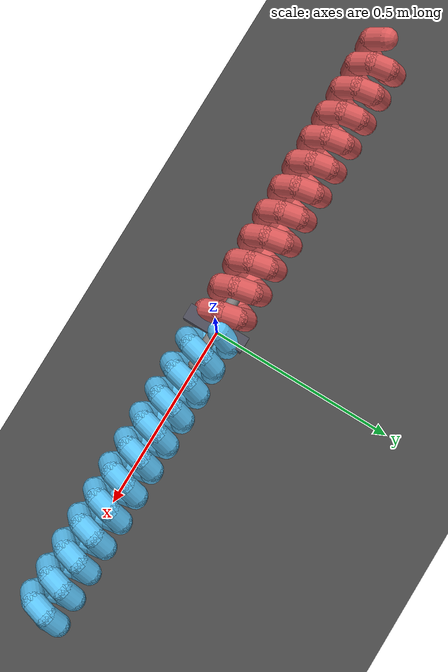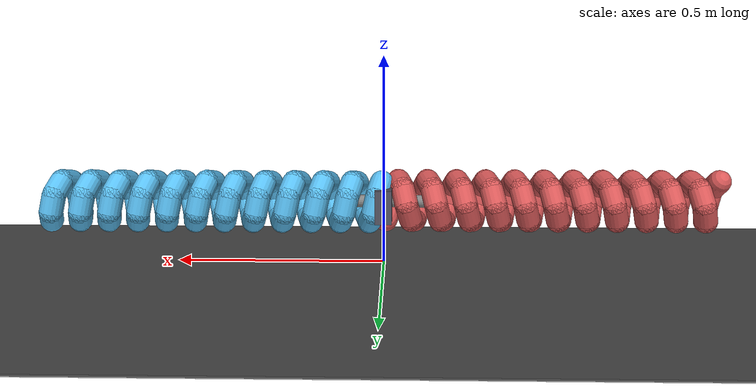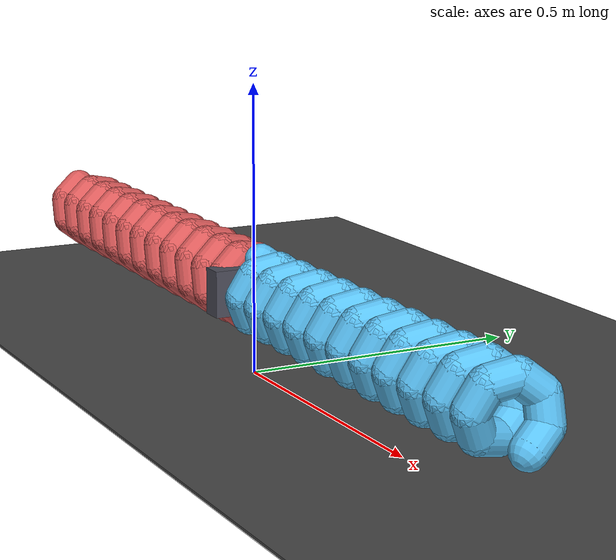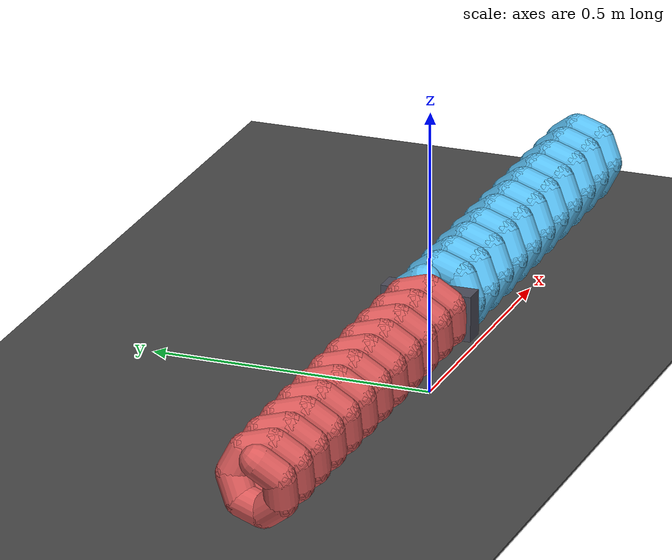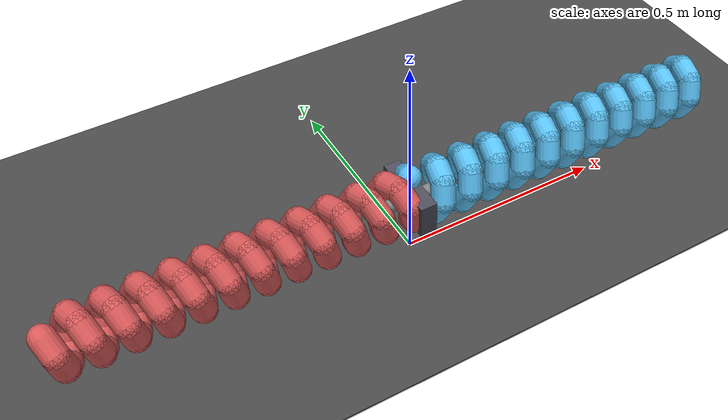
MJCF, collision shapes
<mujoco model="screw_snake_cad">
  <compiler angle="degree" coordinate="local" autolimits="true" inertiafromgeom="true"/>
  <option timestep="0.001" gravity="0 0 -9.81" integrator="implicitfast" iterations="100" solver="Newton"/>

  <default>
    <geom rgba="0.8 0.8 0.8 1" condim="6" friction="6.0 0.01 0.002"
          solref="0.003 1" solimp="0.96 0.96 0.01"/>
    <joint armature="0.001" damping="0.05"/>
    <motor ctrllimited="false"/>   <!-- velocity actuators -->
  </default>

  <asset>
    <!-- NEW CAD meshes for visuals -->
    <mesh name="cad_left"  file="NEW_SIMPLIFY_TESTER_REV_A.stl"  scale="0.01 0.01 0.01"/>
    <mesh name="cad_right" file="NEW_TESTER_REV_B.stl"  scale="0.01 0.01 0.01"/>

    <!-- Checkerboard texture for improved ground visibility -->
    <texture name="checker" type="2d" builtin="checker" width="512" height="512"
             rgb1="1.0 1.0 1.0" rgb2="0.85 0.85 0.85"/>
    <material name="checkermat" texture="checker" texrepeat="30 30" reflectance="0.3" specular="0.5" shininess="0.5"/>
  </asset>

  <worldbody>
    <!-- Bright lights for better visibility -->
    <light directional="true" diffuse="0.8 0.8 0.8" specular="0.3 0.3 0.3" pos="0 0 5" dir="0 0 -1"/>
    <light directional="true" diffuse="0.4 0.4 0.4" specular="0.1 0.1 0.1" pos="3 3 4" dir="-1 -1 -1"/>
    <light directional="true" diffuse="0.4 0.4 0.4" specular="0.1 0.1 0.1" pos="-3 -3 4" dir="1 1 -1"/>

    <!-- Improved ground plane with checkerboard pattern -->
    <geom name="ground" type="plane" size="10 10 0.2" material="checkermat" friction="2.5 0.01 0.002"/>

    <!-- Compliant soft mat for ribs to bite into (semi-transparent so checkerboard shows through) -->
    <body pos="0 0 0.002">
      <geom name="mat" type="box" size="8 8 0.002" rgba="0.28 0.28 0.28 0.2"
            friction="6.0 0.01 0.002" solref="0.004 2.0" solimp="0.90 0.95 0.001"/>
    </body>

    <!-- Ridges: enable for X-only travel; disable for Y travel to avoid hopping -->

    <body name="snake_base" pos="0 0 0.15">
      <!-- Allow translation in X, Y, Z (from snake_screws.xml) -->
      <joint name="slide_x" type="slide" axis="1 0 0" limited="false" damping="0.2"/>
      <joint name="slide_y" type="slide" axis="0 1 0" limited="false" damping="0.8"/>
      <joint name="slide_z" type="slide" axis="0 0 1" limited="true" range="0.14 0.16" damping="2.0"/>

      <!-- mid chassis (no contact) - heavier for more normal force -->
      <geom name="chassis" type="box" size="0.05 0.06 0.02" pos="0 0 0.03"
            rgba="0.1 0.15 0.2 0" mass="1.0" contype="0" conaffinity="0"/>

      <!-- CENTER OBJECT: Connects screws, adds mass/inertia -->
      <geom name="center_keel" type="box" size="0.02 0.08 0.04" pos="0 0 0"
            rgba="0.3 0.3 0.35 0" mass="0.20"/>

      <!-- Hinge pin connecting the two screws (visible) -->
      <geom name="hinge_pin" type="capsule" fromto="-0.1 0 0 0.1 0 0" size="0.015"
            rgba="0.5 0.5 0.5 1" contype="0" conaffinity="0" mass="0.05"/>

      <!-- Right screw: RIGHT-HAND thread (physics from snake_screws.xml) -->
    <body name="screw_right" pos="-0.405 0 0">
      <joint name="jr" type="hinge" axis="1 0 0" pos="0 0 0"
             limited="false" damping="0.001" frictionloss="0.0"/>

      <!-- CAD visual mesh -->
      <geom name="cad_right_vis" type="mesh" mesh="cad_right"
            pos="0.405 0 0.0204"
            euler="0 90 0" rgba="0.85 0.2 0.2 1"
            contype="0" conaffinity="0" mass="0"/>

      <!-- Physics geometry (invisible) -->
      <geom name="core_screw_right" type="cylinder" fromto="-0.4 0 0  0.4 0 0"
            size="0.0425" rgba="0.595 0.245 0.245 0" mass="0.4"
            contype="0" conaffinity="0"/>

      <!-- Thread ribs (invisible, from snake_screws.xml) -->
      <geom type="capsule" fromto="-0.4 -0.0111 0.0487 -0.39 -0.045 0.0217" size="0.028" rgba="0.85 0.35 0.35 0" friction="3.5 0.01 0.002" mass="0.003"/>
      <geom type="capsule" fromto="-0.39 -0.045 0.0217 -0.38 -0.045 -0.0217" size="0.028" rgba="0.85 0.35 0.35 0" friction="3.5 0.01 0.002" mass="0.003"/>
      <geom type="capsule" fromto="-0.38 -0.045 -0.0217 -0.37 -0.0111 -0.0487" size="0.028" rgba="0.85 0.35 0.35 0" friction="3.5 0.01 0.002" mass="0.003"/>
      <geom type="capsule" fromto="-0.37 -0.0111 -0.0487 -0.36 0.0312 -0.0391" size="0.028" rgba="0.85 0.35 0.35 0" friction="3.5 0.01 0.002" mass="0.003"/>
      <geom type="capsule" fromto="-0.36 0.0312 -0.0391 -0.35 0.05 0" size="0.028" rgba="0.85 0.35 0.35 0" friction="3.5 0.01 0.002" mass="0.003"/>
      <geom type="capsule" fromto="-0.35 0.05 0 -0.34 0.0312 0.0391" size="0.028" rgba="0.85 0.35 0.35 0" friction="3.5 0.01 0.002" mass="0.003"/>
      <geom type="capsule" fromto="-0.34 0.0312 0.0391 -0.33 -0.0111 0.0487" size="0.028" rgba="0.85 0.35 0.35 0" friction="3.5 0.01 0.002" mass="0.003"/>
      <geom type="capsule" fromto="-0.33 -0.0111 0.0487 -0.32 -0.045 0.0217" size="0.028" rgba="0.85 0.35 0.35 0" friction="3.5 0.01 0.002" mass="0.003"/>
      <geom type="capsule" fromto="-0.32 -0.045 0.0217 -0.31 -0.045 -0.0217" size="0.028" rgba="0.85 0.35 0.35 0" friction="3.5 0.01 0.002" mass="0.003"/>
      <geom type="capsule" fromto="-0.31 -0.045 -0.0217 -0.30 -0.0111 -0.0487" size="0.028" rgba="0.85 0.35 0.35 0" friction="3.5 0.01 0.002" mass="0.003"/>
      <geom type="capsule" fromto="-0.30 -0.0111 -0.0487 -0.29 0.0312 -0.0391" size="0.028" rgba="0.85 0.35 0.35 0" friction="3.5 0.01 0.002" mass="0.003"/>
      <geom type="capsule" fromto="-0.29 0.0312 -0.0391 -0.28 0.05 0" size="0.028" rgba="0.85 0.35 0.35 0" friction="3.5 0.01 0.002" mass="0.003"/>
      <geom type="capsule" fromto="-0.28 0.05 0 -0.27 0.0312 0.0391" size="0.028" rgba="0.85 0.35 0.35 0" friction="3.5 0.01 0.002" mass="0.003"/>
      <geom type="capsule" fromto="-0.27 0.0312 0.0391 -0.26 -0.0111 0.0487" size="0.028" rgba="0.85 0.35 0.35 0" friction="3.5 0.01 0.002" mass="0.003"/>
      <geom type="capsule" fromto="-0.26 -0.0111 0.0487 -0.25 -0.045 0.0217" size="0.028" rgba="0.85 0.35 0.35 0" friction="3.5 0.01 0.002" mass="0.003"/>
      <geom type="capsule" fromto="-0.25 -0.045 0.0217 -0.24 -0.045 -0.0217" size="0.028" rgba="0.85 0.35 0.35 0" friction="3.5 0.01 0.002" mass="0.003"/>
      <geom type="capsule" fromto="-0.24 -0.045 -0.0217 -0.23 -0.0111 -0.0487" size="0.028" rgba="0.85 0.35 0.35 0" friction="3.5 0.01 0.002" mass="0.003"/>
      <geom type="capsule" fromto="-0.23 -0.0111 -0.0487 -0.22 0.0312 -0.0391" size="0.028" rgba="0.85 0.35 0.35 0" friction="3.5 0.01 0.002" mass="0.003"/>
      <geom type="capsule" fromto="-0.22 0.0312 -0.0391 -0.21 0.05 0" size="0.028" rgba="0.85 0.35 0.35 0" friction="3.5 0.01 0.002" mass="0.003"/>
      <geom type="capsule" fromto="-0.21 0.05 0 -0.20 0.0312 0.0391" size="0.028" rgba="0.85 0.35 0.35 0" friction="3.5 0.01 0.002" mass="0.003"/>
      <geom type="capsule" fromto="-0.20 0.0312 0.0391 -0.19 -0.0111 0.0487" size="0.028" rgba="0.85 0.35 0.35 0" friction="3.5 0.01 0.002" mass="0.003"/>
      <geom type="capsule" fromto="-0.19 -0.0111 0.0487 -0.18 -0.045 0.0217" size="0.028" rgba="0.85 0.35 0.35 0" friction="3.5 0.01 0.002" mass="0.003"/>
      <geom type="capsule" fromto="-0.18 -0.045 0.0217 -0.17 -0.045 -0.0217" size="0.028" rgba="0.85 0.35 0.35 0" friction="3.5 0.01 0.002" mass="0.003"/>
      <geom type="capsule" fromto="-0.17 -0.045 -0.0217 -0.16 -0.0111 -0.0487" size="0.028" rgba="0.85 0.35 0.35 0" friction="3.5 0.01 0.002" mass="0.003"/>
      <geom type="capsule" fromto="-0.16 -0.0111 -0.0487 -0.15 0.0312 -0.0391" size="0.028" rgba="0.85 0.35 0.35 0" friction="3.5 0.01 0.002" mass="0.003"/>
      <geom type="capsule" fromto="-0.15 0.0312 -0.0391 -0.14 0.05 0" size="0.028" rgba="0.85 0.35 0.35 0" friction="3.5 0.01 0.002" mass="0.003"/>
      <geom type="capsule" fromto="-0.14 0.05 0 -0.13 0.0312 0.0391" size="0.028" rgba="0.85 0.35 0.35 0" friction="3.5 0.01 0.002" mass="0.003"/>
      <geom type="capsule" fromto="-0.13 0.0312 0.0391 -0.12 -0.0111 0.0487" size="0.028" rgba="0.85 0.35 0.35 0" friction="3.5 0.01 0.002" mass="0.003"/>
      <geom type="capsule" fromto="-0.12 -0.0111 0.0487 -0.11 -0.045 0.0217" size="0.028" rgba="0.85 0.35 0.35 0" friction="3.5 0.01 0.002" mass="0.003"/>
      <geom type="capsule" fromto="-0.11 -0.045 0.0217 -0.10 -0.045 -0.0217" size="0.028" rgba="0.85 0.35 0.35 0" friction="3.5 0.01 0.002" mass="0.003"/>
      <geom type="capsule" fromto="-0.10 -0.045 -0.0217 -0.09 -0.0111 -0.0487" size="0.028" rgba="0.85 0.35 0.35 0" friction="3.5 0.01 0.002" mass="0.003"/>
      <geom type="capsule" fromto="-0.09 -0.0111 -0.0487 -0.08 0.0312 -0.0391" size="0.028" rgba="0.85 0.35 0.35 0" friction="3.5 0.01 0.002" mass="0.003"/>
      <geom type="capsule" fromto="-0.08 0.0312 -0.0391 -0.07 0.05 0" size="0.028" rgba="0.85 0.35 0.35 0" friction="3.5 0.01 0.002" mass="0.003"/>
      <geom type="capsule" fromto="-0.07 0.05 0 -0.06 0.0312 0.0391" size="0.028" rgba="0.85 0.35 0.35 0" friction="3.5 0.01 0.002" mass="0.003"/>
      <geom type="capsule" fromto="-0.06 0.0312 0.0391 -0.05 -0.0111 0.0487" size="0.028" rgba="0.85 0.35 0.35 0" friction="3.5 0.01 0.002" mass="0.003"/>
      <geom type="capsule" fromto="-0.05 -0.0111 0.0487 -0.04 -0.045 0.0217" size="0.028" rgba="0.85 0.35 0.35 0" friction="3.5 0.01 0.002" mass="0.003"/>
      <geom type="capsule" fromto="-0.04 -0.045 0.0217 -0.03 -0.045 -0.0217" size="0.028" rgba="0.85 0.35 0.35 0" friction="3.5 0.01 0.002" mass="0.003"/>
      <geom type="capsule" fromto="-0.03 -0.045 -0.0217 -0.02 -0.0111 -0.0487" size="0.028" rgba="0.85 0.35 0.35 0" friction="3.5 0.01 0.002" mass="0.003"/>
      <geom type="capsule" fromto="-0.02 -0.0111 -0.0487 -0.01 0.0312 -0.0391" size="0.028" rgba="0.85 0.35 0.35 0" friction="3.5 0.01 0.002" mass="0.003"/>
      <geom type="capsule" fromto="-0.01 0.0312 -0.0391 0.0 0.05 0" size="0.028" rgba="0.85 0.35 0.35 0" friction="3.5 0.01 0.002" mass="0.003"/>
      <geom type="capsule" fromto="0.0 0.05 0 0.01 0.0312 0.0391" size="0.028" rgba="0.85 0.35 0.35 0" friction="3.5 0.01 0.002" mass="0.003"/>
      <geom type="capsule" fromto="0.01 0.0312 0.0391 0.02 -0.0111 0.0487" size="0.028" rgba="0.85 0.35 0.35 0" friction="3.5 0.01 0.002" mass="0.003"/>
      <geom type="capsule" fromto="0.02 -0.0111 0.0487 0.03 -0.045 0.0217" size="0.028" rgba="0.85 0.35 0.35 0" friction="3.5 0.01 0.002" mass="0.003"/>
      <geom type="capsule" fromto="0.03 -0.045 0.0217 0.04 -0.045 -0.0217" size="0.028" rgba="0.85 0.35 0.35 0" friction="3.5 0.01 0.002" mass="0.003"/>
      <geom type="capsule" fromto="0.04 -0.045 -0.0217 0.05 -0.0111 -0.0487" size="0.028" rgba="0.85 0.35 0.35 0" friction="3.5 0.01 0.002" mass="0.003"/>
      <geom type="capsule" fromto="0.05 -0.0111 -0.0487 0.06 0.0312 -0.0391" size="0.028" rgba="0.85 0.35 0.35 0" friction="3.5 0.01 0.002" mass="0.003"/>
      <geom type="capsule" fromto="0.06 0.0312 -0.0391 0.07 0.05 0" size="0.028" rgba="0.85 0.35 0.35 0" friction="3.5 0.01 0.002" mass="0.003"/>
      <geom type="capsule" fromto="0.07 0.05 0 0.08 0.0312 0.0391" size="0.028" rgba="0.85 0.35 0.35 0" friction="3.5 0.01 0.002" mass="0.003"/>
      <geom type="capsule" fromto="0.08 0.0312 0.0391 0.09 -0.0111 0.0487" size="0.028" rgba="0.85 0.35 0.35 0" friction="3.5 0.01 0.002" mass="0.003"/>
      <geom type="capsule" fromto="0.09 -0.0111 0.0487 0.10 -0.045 0.0217" size="0.028" rgba="0.85 0.35 0.35 0" friction="3.5 0.01 0.002" mass="0.003"/>
      <geom type="capsule" fromto="0.10 -0.045 0.0217 0.11 -0.045 -0.0217" size="0.028" rgba="0.85 0.35 0.35 0" friction="3.5 0.01 0.002" mass="0.003"/>
      <geom type="capsule" fromto="0.11 -0.045 -0.0217 0.12 -0.0111 -0.0487" size="0.028" rgba="0.85 0.35 0.35 0" friction="3.5 0.01 0.002" mass="0.003"/>
      <geom type="capsule" fromto="0.12 -0.0111 -0.0487 0.13 0.0312 -0.0391" size="0.028" rgba="0.85 0.35 0.35 0" friction="3.5 0.01 0.002" mass="0.003"/>
      <geom type="capsule" fromto="0.13 0.0312 -0.0391 0.14 0.05 0" size="0.028" rgba="0.85 0.35 0.35 0" friction="3.5 0.01 0.002" mass="0.003"/>
      <geom type="capsule" fromto="0.14 0.05 0 0.15 0.0312 0.0391" size="0.028" rgba="0.85 0.35 0.35 0" friction="3.5 0.01 0.002" mass="0.003"/>
      <geom type="capsule" fromto="0.15 0.0312 0.0391 0.16 -0.0111 0.0487" size="0.028" rgba="0.85 0.35 0.35 0" friction="3.5 0.01 0.002" mass="0.003"/>
      <geom type="capsule" fromto="0.16 -0.0111 0.0487 0.17 -0.045 0.0217" size="0.028" rgba="0.85 0.35 0.35 0" friction="3.5 0.01 0.002" mass="0.003"/>
      <geom type="capsule" fromto="0.17 -0.045 0.0217 0.18 -0.045 -0.0217" size="0.028" rgba="0.85 0.35 0.35 0" friction="3.5 0.01 0.002" mass="0.003"/>
      <geom type="capsule" fromto="0.18 -0.045 -0.0217 0.19 -0.0111 -0.0487" size="0.028" rgba="0.85 0.35 0.35 0" friction="3.5 0.01 0.002" mass="0.003"/>
      <geom type="capsule" fromto="0.19 -0.0111 -0.0487 0.20 0.0312 -0.0391" size="0.028" rgba="0.85 0.35 0.35 0" friction="3.5 0.01 0.002" mass="0.003"/>
      <geom type="capsule" fromto="0.20 0.0312 -0.0391 0.21 0.05 0" size="0.028" rgba="0.85 0.35 0.35 0" friction="3.5 0.01 0.002" mass="0.003"/>
      <geom type="capsule" fromto="0.21 0.05 0 0.22 0.0312 0.0391" size="0.028" rgba="0.85 0.35 0.35 0" friction="3.5 0.01 0.002" mass="0.003"/>
      <geom type="capsule" fromto="0.22 0.0312 0.0391 0.23 -0.0111 0.0487" size="0.028" rgba="0.85 0.35 0.35 0" friction="3.5 0.01 0.002" mass="0.003"/>
      <geom type="capsule" fromto="0.23 -0.0111 0.0487 0.24 -0.045 0.0217" size="0.028" rgba="0.85 0.35 0.35 0" friction="3.5 0.01 0.002" mass="0.003"/>
      <geom type="capsule" fromto="0.24 -0.045 0.0217 0.25 -0.045 -0.0217" size="0.028" rgba="0.85 0.35 0.35 0" friction="3.5 0.01 0.002" mass="0.003"/>
      <geom type="capsule" fromto="0.25 -0.045 -0.0217 0.26 -0.0111 -0.0487" size="0.028" rgba="0.85 0.35 0.35 0" friction="3.5 0.01 0.002" mass="0.003"/>
      <geom type="capsule" fromto="0.26 -0.0111 -0.0487 0.27 0.0312 -0.0391" size="0.028" rgba="0.85 0.35 0.35 0" friction="3.5 0.01 0.002" mass="0.003"/>
      <geom type="capsule" fromto="0.27 0.0312 -0.0391 0.28 0.05 0" size="0.028" rgba="0.85 0.35 0.35 0" friction="3.5 0.01 0.002" mass="0.003"/>
      <geom type="capsule" fromto="0.28 0.05 0 0.29 0.0312 0.0391" size="0.028" rgba="0.85 0.35 0.35 0" friction="3.5 0.01 0.002" mass="0.003"/>
      <geom type="capsule" fromto="0.29 0.0312 0.0391 0.30 -0.0111 0.0487" size="0.028" rgba="0.85 0.35 0.35 0" friction="3.5 0.01 0.002" mass="0.003"/>
      <geom type="capsule" fromto="0.30 -0.0111 0.0487 0.31 -0.045 0.0217" size="0.028" rgba="0.85 0.35 0.35 0" friction="3.5 0.01 0.002" mass="0.003"/>
      <geom type="capsule" fromto="0.31 -0.045 0.0217 0.32 -0.045 -0.0217" size="0.028" rgba="0.85 0.35 0.35 0" friction="3.5 0.01 0.002" mass="0.003"/>
      <geom type="capsule" fromto="0.32 -0.045 -0.0217 0.33 -0.0111 -0.0487" size="0.028" rgba="0.85 0.35 0.35 0" friction="3.5 0.01 0.002" mass="0.003"/>
      <geom type="capsule" fromto="0.33 -0.0111 -0.0487 0.34 0.0312 -0.0391" size="0.028" rgba="0.85 0.35 0.35 0" friction="3.5 0.01 0.002" mass="0.003"/>
      <geom type="capsule" fromto="0.34 0.0312 -0.0391 0.35 0.05 0" size="0.028" rgba="0.85 0.35 0.35 0" friction="3.5 0.01 0.002" mass="0.003"/>
      <geom type="capsule" fromto="0.35 0.05 0 0.36 0.0312 0.0391" size="0.028" rgba="0.85 0.35 0.35 0" friction="3.5 0.01 0.002" mass="0.003"/>
      <geom type="capsule" fromto="0.36 0.0312 0.0391 0.37 -0.0111 0.0487" size="0.028" rgba="0.85 0.35 0.35 0" friction="3.5 0.01 0.002" mass="0.003"/>
      <geom type="capsule" fromto="0.37 -0.0111 0.0487 0.38 -0.045 0.0217" size="0.028" rgba="0.85 0.35 0.35 0" friction="3.5 0.01 0.002" mass="0.003"/>
      <geom type="capsule" fromto="0.38 -0.045 0.0217 0.39 -0.045 -0.0217" size="0.028" rgba="0.85 0.35 0.35 0" friction="3.5 0.01 0.002" mass="0.003"/>
      <geom type="capsule" fromto="0.39 -0.045 -0.0217 0.40 -0.0111 -0.0487" size="0.028" rgba="0.85 0.35 0.35 0" friction="3.5 0.01 0.002" mass="0.003"/>
    </body>

      <!-- Left screw: LEFT-HAND thread (physics from snake_screws.xml) -->
    <body name="screw_left" pos="0.405 0 0">
      <joint name="jl" type="hinge" axis="1 0 0" pos="0 0 0"
             limited="false" damping="0.001" frictionloss="0.0"/>

      <!-- CAD visual mesh (flipped) -->
      <geom name="cad_left_vis" type="mesh" mesh="cad_left"
            pos="-0.405 0 0.0204"
            euler="0 -90 0" rgba="0.2 0.65 0.95 1"
            contype="0" conaffinity="0" mass="0"/>

      <!-- Physics geometry (invisible) -->
      <geom name="core_screw_left" type="cylinder" fromto="-0.4 0 0  0.4 0 0"
            size="0.0425" rgba="0.245 0.595 0.845 0" mass="0.4"
            contype="0" conaffinity="0"/>

      <!-- Thread ribs (invisible, mirrored from snake_screws.xml) -->
      <geom type="capsule" fromto="-0.4 0.0111 0.0487 -0.39 0.045 0.0217" size="0.028" rgba="0.35 0.75 0.95 0" friction="3.5 0.01 0.002" mass="0.003"/>
      <geom type="capsule" fromto="-0.39 0.045 0.0217 -0.38 0.045 -0.0217" size="0.028" rgba="0.35 0.75 0.95 0" friction="3.5 0.01 0.002" mass="0.003"/>
      <geom type="capsule" fromto="-0.38 0.045 -0.0217 -0.37 0.0111 -0.0487" size="0.028" rgba="0.35 0.75 0.95 0" friction="3.5 0.01 0.002" mass="0.003"/>
      <geom type="capsule" fromto="-0.37 0.0111 -0.0487 -0.36 -0.0312 -0.0391" size="0.028" rgba="0.35 0.75 0.95 0" friction="3.5 0.01 0.002" mass="0.003"/>
      <geom type="capsule" fromto="-0.36 -0.0312 -0.0391 -0.35 -0.05 0" size="0.028" rgba="0.35 0.75 0.95 0" friction="3.5 0.01 0.002" mass="0.003"/>
      <geom type="capsule" fromto="-0.35 -0.05 0 -0.34 -0.0312 0.0391" size="0.028" rgba="0.35 0.75 0.95 0" friction="3.5 0.01 0.002" mass="0.003"/>
      <geom type="capsule" fromto="-0.34 -0.0312 0.0391 -0.33 0.0111 0.0487" size="0.028" rgba="0.35 0.75 0.95 0" friction="3.5 0.01 0.002" mass="0.003"/>
      <geom type="capsule" fromto="-0.33 0.0111 0.0487 -0.32 0.045 0.0217" size="0.028" rgba="0.35 0.75 0.95 0" friction="3.5 0.01 0.002" mass="0.003"/>
      <geom type="capsule" fromto="-0.32 0.045 0.0217 -0.31 0.045 -0.0217" size="0.028" rgba="0.35 0.75 0.95 0" friction="3.5 0.01 0.002" mass="0.003"/>
      <geom type="capsule" fromto="-0.31 0.045 -0.0217 -0.30 0.0111 -0.0487" size="0.028" rgba="0.35 0.75 0.95 0" friction="3.5 0.01 0.002" mass="0.003"/>
      <geom type="capsule" fromto="-0.30 0.0111 -0.0487 -0.29 -0.0312 -0.0391" size="0.028" rgba="0.35 0.75 0.95 0" friction="3.5 0.01 0.002" mass="0.003"/>
      <geom type="capsule" fromto="-0.29 -0.0312 -0.0391 -0.28 -0.05 0" size="0.028" rgba="0.35 0.75 0.95 0" friction="3.5 0.01 0.002" mass="0.003"/>
      <geom type="capsule" fromto="-0.28 -0.05 0 -0.27 -0.0312 0.0391" size="0.028" rgba="0.35 0.75 0.95 0" friction="3.5 0.01 0.002" mass="0.003"/>
      <geom type="capsule" fromto="-0.27 -0.0312 0.0391 -0.26 0.0111 0.0487" size="0.028" rgba="0.35 0.75 0.95 0" friction="3.5 0.01 0.002" mass="0.003"/>
      <geom type="capsule" fromto="-0.26 0.0111 0.0487 -0.25 0.045 0.0217" size="0.028" rgba="0.35 0.75 0.95 0" friction="3.5 0.01 0.002" mass="0.003"/>
      <geom type="capsule" fromto="-0.25 0.045 0.0217 -0.24 0.045 -0.0217" size="0.028" rgba="0.35 0.75 0.95 0" friction="3.5 0.01 0.002" mass="0.003"/>
      <geom type="capsule" fromto="-0.24 0.045 -0.0217 -0.23 0.0111 -0.0487" size="0.028" rgba="0.35 0.75 0.95 0" friction="3.5 0.01 0.002" mass="0.003"/>
      <geom type="capsule" fromto="-0.23 0.0111 -0.0487 -0.22 -0.0312 -0.0391" size="0.028" rgba="0.35 0.75 0.95 0" friction="3.5 0.01 0.002" mass="0.003"/>
      <geom type="capsule" fromto="-0.22 -0.0312 -0.0391 -0.21 -0.05 0" size="0.028" rgba="0.35 0.75 0.95 0" friction="3.5 0.01 0.002" mass="0.003"/>
      <geom type="capsule" fromto="-0.21 -0.05 0 -0.20 -0.0312 0.0391" size="0.028" rgba="0.35 0.75 0.95 0" friction="3.5 0.01 0.002" mass="0.003"/>
      <geom type="capsule" fromto="-0.20 -0.0312 0.0391 -0.19 0.0111 0.0487" size="0.028" rgba="0.35 0.75 0.95 0" friction="3.5 0.01 0.002" mass="0.003"/>
      <geom type="capsule" fromto="-0.19 0.0111 0.0487 -0.18 0.045 0.0217" size="0.028" rgba="0.35 0.75 0.95 0" friction="3.5 0.01 0.002" mass="0.003"/>
      <geom type="capsule" fromto="-0.18 0.045 0.0217 -0.17 0.045 -0.0217" size="0.028" rgba="0.35 0.75 0.95 0" friction="3.5 0.01 0.002" mass="0.003"/>
      <geom type="capsule" fromto="-0.17 0.045 -0.0217 -0.16 0.0111 -0.0487" size="0.028" rgba="0.35 0.75 0.95 0" friction="3.5 0.01 0.002" mass="0.003"/>
      <geom type="capsule" fromto="-0.16 0.0111 -0.0487 -0.15 -0.0312 -0.0391" size="0.028" rgba="0.35 0.75 0.95 0" friction="3.5 0.01 0.002" mass="0.003"/>
      <geom type="capsule" fromto="-0.15 -0.0312 -0.0391 -0.14 -0.05 0" size="0.028" rgba="0.35 0.75 0.95 0" friction="3.5 0.01 0.002" mass="0.003"/>
      <geom type="capsule" fromto="-0.14 -0.05 0 -0.13 -0.0312 0.0391" size="0.028" rgba="0.35 0.75 0.95 0" friction="3.5 0.01 0.002" mass="0.003"/>
      <geom type="capsule" fromto="-0.13 -0.0312 0.0391 -0.12 0.0111 0.0487" size="0.028" rgba="0.35 0.75 0.95 0" friction="3.5 0.01 0.002" mass="0.003"/>
      <geom type="capsule" fromto="-0.12 0.0111 0.0487 -0.11 0.045 0.0217" size="0.028" rgba="0.35 0.75 0.95 0" friction="3.5 0.01 0.002" mass="0.003"/>
      <geom type="capsule" fromto="-0.11 0.045 0.0217 -0.10 0.045 -0.0217" size="0.028" rgba="0.35 0.75 0.95 0" friction="3.5 0.01 0.002" mass="0.003"/>
      <geom type="capsule" fromto="-0.10 0.045 -0.0217 -0.09 0.0111 -0.0487" size="0.028" rgba="0.35 0.75 0.95 0" friction="3.5 0.01 0.002" mass="0.003"/>
      <geom type="capsule" fromto="-0.09 0.0111 -0.0487 -0.08 -0.0312 -0.0391" size="0.028" rgba="0.35 0.75 0.95 0" friction="3.5 0.01 0.002" mass="0.003"/>
      <geom type="capsule" fromto="-0.08 -0.0312 -0.0391 -0.07 -0.05 0" size="0.028" rgba="0.35 0.75 0.95 0" friction="3.5 0.01 0.002" mass="0.003"/>
      <geom type="capsule" fromto="-0.07 -0.05 0 -0.06 -0.0312 0.0391" size="0.028" rgba="0.35 0.75 0.95 0" friction="3.5 0.01 0.002" mass="0.003"/>
      <geom type="capsule" fromto="-0.06 -0.0312 0.0391 -0.05 0.0111 0.0487" size="0.028" rgba="0.35 0.75 0.95 0" friction="3.5 0.01 0.002" mass="0.003"/>
      <geom type="capsule" fromto="-0.05 0.0111 0.0487 -0.04 0.045 0.0217" size="0.028" rgba="0.35 0.75 0.95 0" friction="3.5 0.01 0.002" mass="0.003"/>
      <geom type="capsule" fromto="-0.04 0.045 0.0217 -0.03 0.045 -0.0217" size="0.028" rgba="0.35 0.75 0.95 0" friction="3.5 0.01 0.002" mass="0.003"/>
      <geom type="capsule" fromto="-0.03 0.045 -0.0217 -0.02 0.0111 -0.0487" size="0.028" rgba="0.35 0.75 0.95 0" friction="3.5 0.01 0.002" mass="0.003"/>
      <geom type="capsule" fromto="-0.02 0.0111 -0.0487 -0.01 -0.0312 -0.0391" size="0.028" rgba="0.35 0.75 0.95 0" friction="3.5 0.01 0.002" mass="0.003"/>
      <geom type="capsule" fromto="-0.01 -0.0312 -0.0391 0.0 -0.05 0" size="0.028" rgba="0.35 0.75 0.95 0" friction="3.5 0.01 0.002" mass="0.003"/>
      <geom type="capsule" fromto="0.0 -0.05 0 0.01 -0.0312 0.0391" size="0.028" rgba="0.35 0.75 0.95 0" friction="3.5 0.01 0.002" mass="0.003"/>
      <geom type="capsule" fromto="0.01 -0.0312 0.0391 0.02 0.0111 0.0487" size="0.028" rgba="0.35 0.75 0.95 0" friction="3.5 0.01 0.002" mass="0.003"/>
      <geom type="capsule" fromto="0.02 0.0111 0.0487 0.03 0.045 0.0217" size="0.028" rgba="0.35 0.75 0.95 0" friction="3.5 0.01 0.002" mass="0.003"/>
      <geom type="capsule" fromto="0.03 0.045 0.0217 0.04 0.045 -0.0217" size="0.028" rgba="0.35 0.75 0.95 0" friction="3.5 0.01 0.002" mass="0.003"/>
      <geom type="capsule" fromto="0.04 0.045 -0.0217 0.05 0.0111 -0.0487" size="0.028" rgba="0.35 0.75 0.95 0" friction="3.5 0.01 0.002" mass="0.003"/>
      <geom type="capsule" fromto="0.05 0.0111 -0.0487 0.06 -0.0312 -0.0391" size="0.028" rgba="0.35 0.75 0.95 0" friction="3.5 0.01 0.002" mass="0.003"/>
      <geom type="capsule" fromto="0.06 -0.0312 -0.0391 0.07 -0.05 0" size="0.028" rgba="0.35 0.75 0.95 0" friction="3.5 0.01 0.002" mass="0.003"/>
      <geom type="capsule" fromto="0.07 -0.05 0 0.08 -0.0312 0.0391" size="0.028" rgba="0.35 0.75 0.95 0" friction="3.5 0.01 0.002" mass="0.003"/>
      <geom type="capsule" fromto="0.08 -0.0312 0.0391 0.09 0.0111 0.0487" size="0.028" rgba="0.35 0.75 0.95 0" friction="3.5 0.01 0.002" mass="0.003"/>
      <geom type="capsule" fromto="0.09 0.0111 0.0487 0.10 0.045 0.0217" size="0.028" rgba="0.35 0.75 0.95 0" friction="3.5 0.01 0.002" mass="0.003"/>
      <geom type="capsule" fromto="0.10 0.045 0.0217 0.11 0.045 -0.0217" size="0.028" rgba="0.35 0.75 0.95 0" friction="3.5 0.01 0.002" mass="0.003"/>
      <geom type="capsule" fromto="0.11 0.045 -0.0217 0.12 0.0111 -0.0487" size="0.028" rgba="0.35 0.75 0.95 0" friction="3.5 0.01 0.002" mass="0.003"/>
      <geom type="capsule" fromto="0.12 0.0111 -0.0487 0.13 -0.0312 -0.0391" size="0.028" rgba="0.35 0.75 0.95 0" friction="3.5 0.01 0.002" mass="0.003"/>
      <geom type="capsule" fromto="0.13 -0.0312 -0.0391 0.14 -0.05 0" size="0.028" rgba="0.35 0.75 0.95 0" friction="3.5 0.01 0.002" mass="0.003"/>
      <geom type="capsule" fromto="0.14 -0.05 0 0.15 -0.0312 0.0391" size="0.028" rgba="0.35 0.75 0.95 0" friction="3.5 0.01 0.002" mass="0.003"/>
      <geom type="capsule" fromto="0.15 -0.0312 0.0391 0.16 0.0111 0.0487" size="0.028" rgba="0.35 0.75 0.95 0" friction="3.5 0.01 0.002" mass="0.003"/>
      <geom type="capsule" fromto="0.16 0.0111 0.0487 0.17 0.045 0.0217" size="0.028" rgba="0.35 0.75 0.95 0" friction="3.5 0.01 0.002" mass="0.003"/>
      <geom type="capsule" fromto="0.17 0.045 0.0217 0.18 0.045 -0.0217" size="0.028" rgba="0.35 0.75 0.95 0" friction="3.5 0.01 0.002" mass="0.003"/>
      <geom type="capsule" fromto="0.18 0.045 -0.0217 0.19 0.0111 -0.0487" size="0.028" rgba="0.35 0.75 0.95 0" friction="3.5 0.01 0.002" mass="0.003"/>
      <geom type="capsule" fromto="0.19 0.0111 -0.0487 0.20 -0.0312 -0.0391" size="0.028" rgba="0.35 0.75 0.95 0" friction="3.5 0.01 0.002" mass="0.003"/>
      <geom type="capsule" fromto="0.20 -0.0312 -0.0391 0.21 -0.05 0" size="0.028" rgba="0.35 0.75 0.95 0" friction="3.5 0.01 0.002" mass="0.003"/>
      <geom type="capsule" fromto="0.21 -0.05 0 0.22 -0.0312 0.0391" size="0.028" rgba="0.35 0.75 0.95 0" friction="3.5 0.01 0.002" mass="0.003"/>
      <geom type="capsule" fromto="0.22 -0.0312 0.0391 0.23 0.0111 0.0487" size="0.028" rgba="0.35 0.75 0.95 0" friction="3.5 0.01 0.002" mass="0.003"/>
      <geom type="capsule" fromto="0.23 0.0111 0.0487 0.24 0.045 0.0217" size="0.028" rgba="0.35 0.75 0.95 0" friction="3.5 0.01 0.002" mass="0.003"/>
      <geom type="capsule" fromto="0.24 0.045 0.0217 0.25 0.045 -0.0217" size="0.028" rgba="0.35 0.75 0.95 0" friction="3.5 0.01 0.002" mass="0.003"/>
      <geom type="capsule" fromto="0.25 0.045 -0.0217 0.26 0.0111 -0.0487" size="0.028" rgba="0.35 0.75 0.95 0" friction="3.5 0.01 0.002" mass="0.003"/>
      <geom type="capsule" fromto="0.26 0.0111 -0.0487 0.27 -0.0312 -0.0391" size="0.028" rgba="0.35 0.75 0.95 0" friction="3.5 0.01 0.002" mass="0.003"/>
      <geom type="capsule" fromto="0.27 -0.0312 -0.0391 0.28 -0.05 0" size="0.028" rgba="0.35 0.75 0.95 0" friction="3.5 0.01 0.002" mass="0.003"/>
      <geom type="capsule" fromto="0.28 -0.05 0 0.29 -0.0312 0.0391" size="0.028" rgba="0.35 0.75 0.95 0" friction="3.5 0.01 0.002" mass="0.003"/>
      <geom type="capsule" fromto="0.29 -0.0312 0.0391 0.30 0.0111 0.0487" size="0.028" rgba="0.35 0.75 0.95 0" friction="3.5 0.01 0.002" mass="0.003"/>
      <geom type="capsule" fromto="0.30 0.0111 0.0487 0.31 0.045 0.0217" size="0.028" rgba="0.35 0.75 0.95 0" friction="3.5 0.01 0.002" mass="0.003"/>
      <geom type="capsule" fromto="0.31 0.045 0.0217 0.32 0.045 -0.0217" size="0.028" rgba="0.35 0.75 0.95 0" friction="3.5 0.01 0.002" mass="0.003"/>
      <geom type="capsule" fromto="0.32 0.045 -0.0217 0.33 0.0111 -0.0487" size="0.028" rgba="0.35 0.75 0.95 0" friction="3.5 0.01 0.002" mass="0.003"/>
      <geom type="capsule" fromto="0.33 0.0111 -0.0487 0.34 -0.0312 -0.0391" size="0.028" rgba="0.35 0.75 0.95 0" friction="3.5 0.01 0.002" mass="0.003"/>
      <geom type="capsule" fromto="0.34 -0.0312 -0.0391 0.35 -0.05 0" size="0.028" rgba="0.35 0.75 0.95 0" friction="3.5 0.01 0.002" mass="0.003"/>
      <geom type="capsule" fromto="0.35 -0.05 0 0.36 -0.0312 0.0391" size="0.028" rgba="0.35 0.75 0.95 0" friction="3.5 0.01 0.002" mass="0.003"/>
      <geom type="capsule" fromto="0.36 -0.0312 0.0391 0.37 0.0111 0.0487" size="0.028" rgba="0.35 0.75 0.95 0" friction="3.5 0.01 0.002" mass="0.003"/>
      <geom type="capsule" fromto="0.37 0.0111 0.0487 0.38 0.045 0.0217" size="0.028" rgba="0.35 0.75 0.95 0" friction="3.5 0.01 0.002" mass="0.003"/>
      <geom type="capsule" fromto="0.38 0.045 0.0217 0.39 0.045 -0.0217" size="0.028" rgba="0.35 0.75 0.95 0" friction="3.5 0.01 0.002" mass="0.003"/>
      <geom type="capsule" fromto="0.39 0.045 -0.0217 0.40 0.0111 -0.0487" size="0.028" rgba="0.35 0.75 0.95 0" friction="3.5 0.01 0.002" mass="0.003"/>
    </body>
    </body>
  </worldbody>

  <!-- Velocity motors: ctrl = target rad/s (qvel target) -->
  <actuator>
    <velocity name="motor_r" joint="jr" kv="150"/>
    <velocity name="motor_l" joint="jl" kv="150"/>
  </actuator>

  <visual>
    <map znear="0.005" zfar="100"/>
    <quality shadowsize="4096"/>
    <headlight ambient="0.6 0.6 0.6" diffuse="0.8 0.8 0.8" specular="0.3 0.3 0.3"/>
  </visual>
</mujoco>
